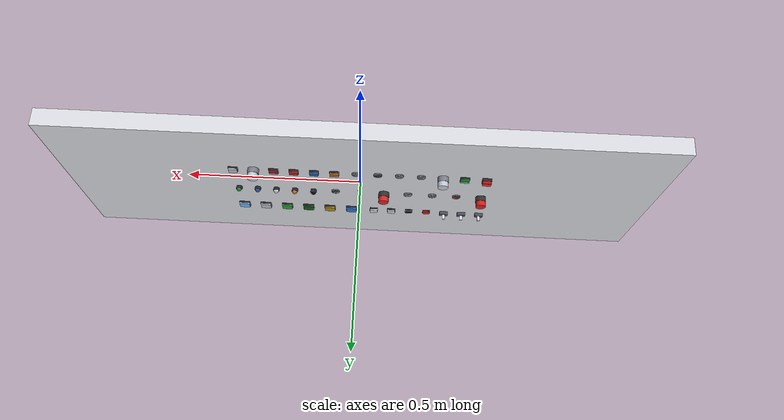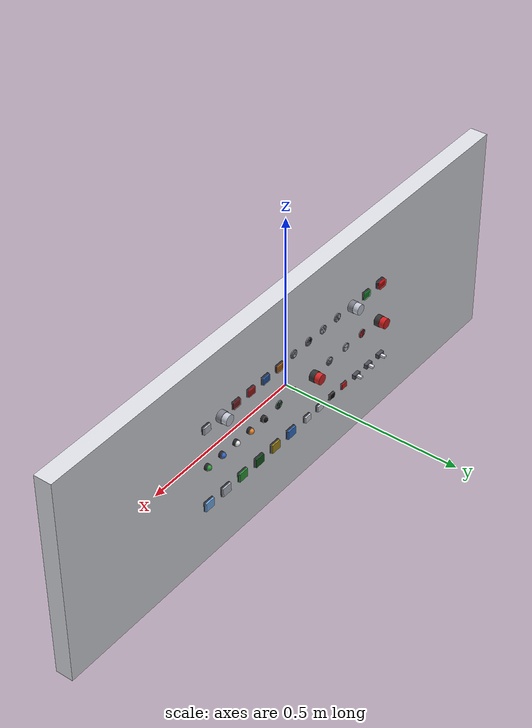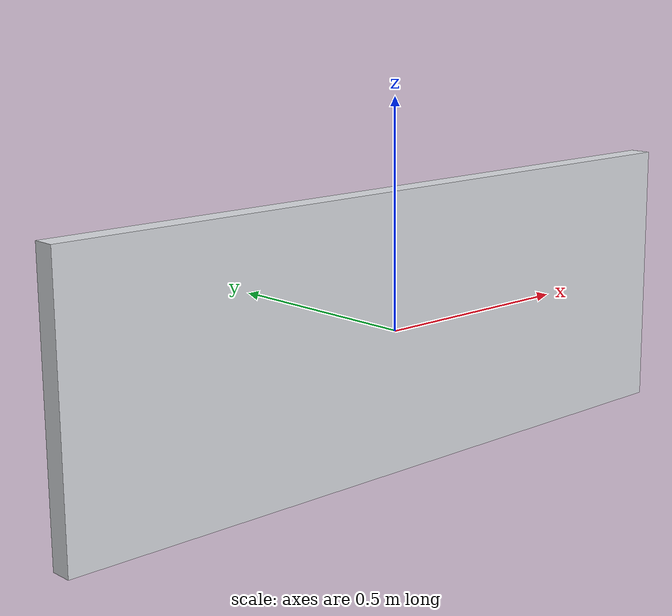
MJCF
<?xml version='1.0' encoding='utf-8'?>
<mujoco model="w2_b2_panel_base">
  <asset>
    <material name="Switch_1_bezel" rgba="0.15 0.15 0.18 1" />
    <material name="Switch_1_button" rgba="0.72 0.74 0.78 1" />
    <material name="Knob_2_base" rgba="0.5 0.5 0.55 1" />
    <material name="Knob_2_button" rgba="0.78 0.80 0.85 1" />
    <material name="Switch_3_bezel" rgba="0.15 0.15 0.18 1" />
    <material name="Switch_3_button" rgba="0.85 0.15 0.15 0.5" />
    <material name="Switch_4_bezel" rgba="0.15 0.15 0.18 1" />
    <material name="Switch_4_button" rgba="0.85 0.15 0.15 0.8" />
    <material name="Switch_5_bezel" rgba="0.15 0.15 0.18 1" />
    <material name="Switch_5_button" rgba="0.20 0.45 0.80 0.8" />
    <material name="Switch_6_bezel" rgba="0.15 0.15 0.18 1" />
    <material name="Switch_6_button" rgba="0.92 0.52 0.15 0.7" />
    <material name="Switch_7_base" rgba="0.5 0.5 0.55 1" />
    <material name="Switch_7_button" rgba="0.78 0.80 0.85 1" />
    <material name="Switch_8_base" rgba="0.5 0.5 0.55 1" />
    <material name="Switch_8_button" rgba="0.05 0.05 0.05 1" />
    <material name="Switch_9_base" rgba="0.5 0.5 0.55 1" />
    <material name="Switch_9_button" rgba="0.78 0.80 0.85 1" />
    <material name="Switch_10_base" rgba="0.5 0.5 0.55 1" />
    <material name="Switch_10_button" rgba="0.78 0.80 0.85 1" />
    <material name="Knob_11_base" rgba="0.5 0.5 0.55 1" />
    <material name="Knob_11_button" rgba="0.78 0.80 0.85 1" />
    <material name="Switch_12_bezel" rgba="0.15 0.15 0.18 1" />
    <material name="Switch_12_button" rgba="0.10 0.90 0.20 0.5" />
    <material name="Switch_13_bezel" rgba="0.15 0.15 0.18 1" />
    <material name="Switch_13_button" rgba="0.95 0.10 0.10 0.8" />
    <material name="Switch_14_base" rgba="0.15 0.15 0.18 1" />
    <material name="Switch_14_button" rgba="0.18 0.62 0.22 1" />
    <material name="Switch_15_base" rgba="0.15 0.15 0.18 1" />
    <material name="Switch_15_button" rgba="0.20 0.40 0.78 1" />
    <material name="Switch_16_base" rgba="0.15 0.15 0.18 1" />
    <material name="Switch_16_button" rgba="0.95 0.95 0.95 1" />
    <material name="Switch_17_base" rgba="0.15 0.15 0.18 1" />
    <material name="Switch_17_button" rgba="0.92 0.52 0.15 1" />
    <material name="Switch_18_base" rgba="0.15 0.15 0.18 1" />
    <material name="Switch_18_button" rgba="0.05 0.05 0.05 1" />
    <material name="Switch_19_base" rgba="0.5 0.5 0.55 1" />
    <material name="Switch_19_button" rgba="0.08 0.35 0.12 1" />
    <material name="Stop_20_base" rgba="0.2 0.2 0.2 1" />
    <material name="Stop_20_button" rgba="0.85 0.15 0.15 1" />
    <material name="Switch_21_base" rgba="0.5 0.5 0.55 1" />
    <material name="Switch_21_button" rgba="0.78 0.80 0.85 1" />
    <material name="Switch_22_base" rgba="0.5 0.5 0.55 1" />
    <material name="Switch_22_button" rgba="0.78 0.80 0.85 1" />
    <material name="Switch_23_base" rgba="0.5 0.5 0.55 1" />
    <material name="Switch_23_button" rgba="0.82 0.12 0.12 1" />
    <material name="Stop_24_base" rgba="0.2 0.2 0.2 1" />
    <material name="Stop_24_button" rgba="0.85 0.12 0.12 1" />
    <material name="Switch_25_bezel" rgba="0.15 0.15 0.18 1" />
    <material name="Switch_25_button" rgba="0.45 0.70 0.95 1" />
    <material name="Switch_26_bezel" rgba="0.15 0.15 0.18 1" />
    <material name="Switch_26_button" rgba="0.72 0.74 0.78 1" />
    <material name="Switch_27_bezel" rgba="0.15 0.15 0.18 1" />
    <material name="Switch_27_button" rgba="0.18 0.62 0.22 1" />
    <material name="Switch_28_bezel" rgba="0.15 0.15 0.18 1" />
    <material name="Switch_28_button" rgba="0.08 0.35 0.12 1" />
    <material name="Switch_29_bezel" rgba="0.15 0.15 0.18 1" />
    <material name="Switch_29_button" rgba="0.65 0.55 0.10 1" />
    <material name="Switch_30_bezel" rgba="0.15 0.15 0.18 1" />
    <material name="Switch_30_button" rgba="0.20 0.45 0.80 1" />
    <material name="Switch_31_bezel" rgba="0.15 0.15 0.18 1" />
    <material name="Switch_31_button" rgba="0.82 0.84 0.87 1" />
    <material name="Switch_32_bezel" rgba="0.15 0.15 0.18 1" />
    <material name="Switch_32_button" rgba="0.82 0.84 0.87 1" />
    <material name="Switch_33_bezel" rgba="0.15 0.15 0.18 1" />
    <material name="Switch_33_button" rgba="0.05 0.05 0.05 1" />
    <material name="Switch_34_bezel" rgba="0.15 0.15 0.18 1" />
    <material name="Switch_34_button" rgba="0.82 0.12 0.12 1" />
    <material name="Switch_35_material" rgba="0.3 0.3 0.35 1" />
    <material name="Switch_36_material" rgba="0.3 0.3 0.35 1" />
    <material name="Switch_37_material" rgba="0.3 0.3 0.35 1" />
  </asset>
  <worldbody>
    <body name="panel_mount" pos="0 0 0">
      <geom name="panel_backplate" type="box" pos="0 0 0" size="0.845 0.025 0.308" rgba="0.86 0.87 0.89 1" contype="1" conaffinity="1" />
      <site name="panel_origin" pos="0 0.025 0" size="0.006" rgba="1 0 0 1" />
      <body name="panel_slot_r4_c1" pos="0.35 0.03 0.12" quat="0.7071068 -0.7071068 0 0">
        <body name="Switch_1_r4_c1">
          <geom name="Switch_1_bezel__r4_c1" type="box" pos="0 0 0.0025" size="0.013 0.0105 0.0025" material="Switch_1_bezel" />
          <geom name="Switch_1_button__r4_c1" type="box" pos="0 0 0.0045" size="0.012 0.0095 0.0045" material="Switch_1_button" />
        </body>
      </body>
      <body name="panel_slot_r4_c2" pos="0.294 0.03 0.12" quat="0.7071068 -0.7071068 0 0">
        <body name="Knob_2_r4_c2">
          <geom name="Knob_2_base__r4_c2" type="cylinder" pos="0 0 0.0075" size="0.016 0.0075" material="Knob_2_base" />
          <geom name="Knob_2_button__r4_c2" type="cylinder" pos="0 0 0.015" size="0.0145 0.015" material="Knob_2_button" />
        </body>
      </body>
      <body name="panel_slot_r4_c3" pos="0.238 0.03 0.12" quat="0.7071068 -0.7071068 0 0">
        <body name="Switch_3_r4_c3">
          <geom name="Switch_3_bezel__r4_c3" type="box" pos="0 0 0.0025" size="0.013 0.0105 0.0025" material="Switch_3_bezel" />
          <geom name="Switch_3_button__r4_c3" type="box" pos="0 0 0.0045" size="0.012 0.0095 0.0045" material="Switch_3_button" />
        </body>
      </body>
      <body name="panel_slot_r4_c4" pos="0.182 0.03 0.12" quat="0.7071068 -0.7071068 0 0">
        <body name="Switch_4_r4_c4">
          <geom name="Switch_4_bezel__r4_c4" type="box" pos="0 0 0.0025" size="0.013 0.0105 0.0025" material="Switch_4_bezel" />
          <geom name="Switch_4_button__r4_c4" type="box" pos="0 0 0.0045" size="0.012 0.0095 0.0045" material="Switch_4_button" />
        </body>
      </body>
      <body name="panel_slot_r4_c5" pos="0.126 0.03 0.12" quat="0.7071068 -0.7071068 0 0">
        <body name="Switch_5_r4_c5">
          <geom name="Switch_5_bezel__r4_c5" type="box" pos="0 0 0.0025" size="0.013 0.0105 0.0025" material="Switch_5_bezel" />
          <geom name="Switch_5_button__r4_c5" type="box" pos="0 0 0.0045" size="0.012 0.0095 0.0045" material="Switch_5_button" />
        </body>
      </body>
      <body name="panel_slot_r4_c6" pos="0.07 0.03 0.12" quat="0.7071068 -0.7071068 0 0">
        <body name="Switch_6_r4_c6">
          <geom name="Switch_6_bezel__r4_c6" type="box" pos="0 0 0.0025" size="0.013 0.0105 0.0025" material="Switch_6_bezel" />
          <geom name="Switch_6_button__r4_c6" type="box" pos="0 0 0.0045" size="0.012 0.0095 0.0045" material="Switch_6_button" />
        </body>
      </body>
      <body name="panel_slot_r4_c7" pos="0.01 0.03 0.12" quat="0.7071068 -0.7071068 0 0">
        <body name="Switch_7_r4_c7">
          <geom name="Switch_7_base__r4_c7" type="cylinder" pos="0 0 0.0015" size="0.012 0.0015" material="Switch_7_base" />
          <geom name="Switch_7_button__r4_c7" type="cylinder" pos="0 0 0.0015" size="0.0105 0.0015" material="Switch_7_button" />
        </body>
      </body>
      <body name="panel_slot_r4_c8" pos="-0.05 0.03 0.12" quat="0.7071068 -0.7071068 0 0">
        <body name="Switch_8_r4_c8">
          <geom name="Switch_8_base__r4_c8" type="cylinder" pos="0 0 0.0015" size="0.012 0.0015" material="Switch_8_base" />
          <geom name="Switch_8_button__r4_c8" type="cylinder" pos="0 0 0.0015" size="0.0105 0.0015" material="Switch_8_button" />
        </body>
      </body>
      <body name="panel_slot_r4_c9" pos="-0.11 0.03 0.12" quat="0.7071068 -0.7071068 0 0">
        <body name="Switch_9_r4_c9">
          <geom name="Switch_9_base__r4_c9" type="cylinder" pos="0 0 0.0015" size="0.012 0.0015" material="Switch_9_base" />
          <geom name="Switch_9_button__r4_c9" type="cylinder" pos="0 0 0.0015" size="0.0105 0.0015" material="Switch_9_button" />
        </body>
      </body>
      <body name="panel_slot_r4_c10" pos="-0.17 0.03 0.12" quat="0.7071068 -0.7071068 0 0">
        <body name="Switch_10_r4_c10">
          <geom name="Switch_10_base__r4_c10" type="cylinder" pos="0 0 0.0015" size="0.012 0.0015" material="Switch_10_base" />
          <geom name="Switch_10_button__r4_c10" type="cylinder" pos="0 0 0.0015" size="0.0105 0.0015" material="Switch_10_button" />
        </body>
      </body>
      <body name="panel_slot_r4_c11" pos="-0.23 0.03 0.12" quat="0.7071068 -0.7071068 0 0">
        <body name="Knob_11_r4_c11">
          <geom name="Knob_11_base__r4_c11" type="cylinder" pos="0 0 0.0075" size="0.0155 0.0075" material="Knob_11_base" />
          <geom name="Knob_11_button__r4_c11" type="cylinder" pos="0 0 0.015" size="0.0145 0.015" material="Knob_11_button" />
        </body>
      </body>
      <body name="panel_slot_r4_c12" pos="-0.29 0.03 0.12" quat="0.7071068 -0.7071068 0 0">
        <body name="Switch_12_r4_c12">
          <geom name="Switch_12_bezel__r4_c12" type="box" pos="0 0 0.0025" size="0.013 0.0105 0.0025" material="Switch_12_bezel" />
          <geom name="Switch_12_button__r4_c12" type="box" pos="0 0 0.0045" size="0.012 0.0095 0.0045" material="Switch_12_button" />
        </body>
      </body>
      <body name="panel_slot_r4_c13" pos="-0.35 0.03 0.12" quat="0.7071068 -0.7071068 0 0">
        <body name="Switch_13_r4_c13">
          <geom name="Switch_13_bezel__r4_c13" type="box" pos="0 0 0.0041" size="0.013 0.0105 0.0041" material="Switch_13_bezel" />
          <geom name="Switch_13_button__r4_c13" type="box" pos="0 0 0.0075" size="0.012 0.0095 0.0075" material="Switch_13_button" />
        </body>
      </body>
      <body name="panel_slot_r5_c1" pos="0.35 0.03 0" quat="0.7071068 -0.7071068 0 0">
        <body name="Switch_14_r5_c1">
          <geom name="Switch_14_base__r5_c1" type="cylinder" pos="0 0 0.004" size="0.009 0.004" material="Switch_14_base" />
          <geom name="Switch_14_button__r5_c1" type="sphere" pos="0 0 0.008" size="0.0075" material="Switch_14_button" />
        </body>
      </body>
      <body name="panel_slot_r5_c2" pos="0.296 0.03 0" quat="0.7071068 -0.7071068 0 0">
        <body name="Switch_15_r5_c2">
          <geom name="Switch_15_base__r5_c2" type="cylinder" pos="0 0 0.004" size="0.009 0.004" material="Switch_15_base" />
          <geom name="Switch_15_button__r5_c2" type="sphere" pos="0 0 0.008" size="0.0075" material="Switch_15_button" />
        </body>
      </body>
      <body name="panel_slot_r5_c3" pos="0.242 0.03 0" quat="0.7071068 -0.7071068 0 0">
        <body name="Switch_16_r5_c3">
          <geom name="Switch_16_base__r5_c3" type="cylinder" pos="0 0 0.004" size="0.009 0.004" material="Switch_16_base" />
          <geom name="Switch_16_button__r5_c3" type="sphere" pos="0 0 0.008" size="0.0075" material="Switch_16_button" />
        </body>
      </body>
      <body name="panel_slot_r5_c4" pos="0.188 0.03 0" quat="0.7071068 -0.7071068 0 0">
        <body name="Switch_17_r5_c4">
          <geom name="Switch_17_base__r5_c4" type="cylinder" pos="0 0 0.004" size="0.009 0.004" material="Switch_17_base" />
          <geom name="Switch_17_button__r5_c4" type="sphere" pos="0 0 0.008" size="0.0075" material="Switch_17_button" />
        </body>
      </body>
      <body name="panel_slot_r5_c5" pos="0.134 0.03 0" quat="0.7071068 -0.7071068 0 0">
        <body name="Switch_18_r5_c5">
          <geom name="Switch_18_base__r5_c5" type="cylinder" pos="0 0 0.004" size="0.009 0.004" material="Switch_18_base" />
          <geom name="Switch_18_button__r5_c5" type="sphere" pos="0 0 0.008" size="0.0075" material="Switch_18_button" />
        </body>
      </body>
      <body name="panel_slot_r5_c6" pos="0.07 0.03 0" quat="0.7071068 -0.7071068 0 0">
        <body name="Switch_19_r5_c6">
          <geom name="Switch_19_base__r5_c6" type="cylinder" pos="0 0 0.0015" size="0.012 0.0015" material="Switch_19_base" />
          <geom name="Switch_19_button__r5_c6" type="cylinder" pos="0 0 0.0015" size="0.0105 0.0015" material="Switch_19_button" />
        </body>
      </body>
      <body name="panel_slot_r5_c8" pos="-0.07 0.03 0" quat="0.7071068 -0.7071068 0 0">
        <body name="Stop_20_r5_c8">
          <geom name="Stop_20_base__r5_c8" type="cylinder" pos="0 0 0.0075" size="0.0155 0.0075" material="Stop_20_base" />
          <geom name="Stop_20_button__r5_c8" type="cylinder" pos="0 0 0.015" size="0.0145 0.015" material="Stop_20_button" />
        </body>
      </body>
      <body name="panel_slot_r5_c9" pos="-0.14 0.03 0" quat="0.7071068 -0.7071068 0 0">
        <body name="Switch_21_r5_c9">
          <geom name="Switch_21_base__r5_c9" type="cylinder" pos="0 0 0.0015" size="0.012 0.0015" material="Switch_21_base" />
          <geom name="Switch_21_button__r5_c9" type="cylinder" pos="0 0 0.0015" size="0.0105 0.0015" material="Switch_21_button" />
        </body>
      </body>
      <body name="panel_slot_r5_c10" pos="-0.21 0.03 0" quat="0.7071068 -0.7071068 0 0">
        <body name="Switch_22_r5_c10">
          <geom name="Switch_22_base__r5_c10" type="cylinder" pos="0 0 0.0015" size="0.012 0.0015" material="Switch_22_base" />
          <geom name="Switch_22_button__r5_c10" type="cylinder" pos="0 0 0.0015" size="0.0105 0.0015" material="Switch_22_button" />
        </body>
      </body>
      <body name="panel_slot_r5_c11" pos="-0.28 0.03 0" quat="0.7071068 -0.7071068 0 0">
        <body name="Switch_23_r5_c11">
          <geom name="Switch_23_base__r5_c11" type="cylinder" pos="0 0 0.0015" size="0.012 0.0015" material="Switch_23_base" />
          <geom name="Switch_23_button__r5_c11" type="cylinder" pos="0 0 0.0015" size="0.0105 0.0015" material="Switch_23_button" />
        </body>
      </body>
      <body name="panel_slot_r5_c12" pos="-0.35 0.03 0" quat="0.7071068 -0.7071068 0 0">
        <body name="Stop_24_r5_c12">
          <geom name="Stop_24_base__r5_c12" type="cylinder" pos="0 0 0.0075" size="0.0155 0.0075" material="Stop_24_base" />
          <geom name="Stop_24_button__r5_c12" type="cylinder" pos="0 0 0.015" size="0.0145 0.015" material="Stop_24_button" />
        </body>
      </body>
      <body name="panel_slot_r6_c1" pos="0.35 0.03 -0.12" quat="0.7071068 -0.7071068 0 0">
        <body name="Switch_25_r6_c1">
          <geom name="Switch_25_bezel__r6_c1" type="box" pos="0 0 0.0025" size="0.016 0.0135 0.0025" material="Switch_25_bezel" />
          <geom name="Switch_25_button__r6_c1" type="box" pos="0 0 0.0045" size="0.015 0.0125 0.0045" material="Switch_25_button" />
        </body>
      </body>
      <body name="panel_slot_r6_c2" pos="0.285 0.03 -0.12" quat="0.7071068 -0.7071068 0 0">
        <body name="Switch_26_r6_c2">
          <geom name="Switch_26_bezel__r6_c2" type="box" pos="0 0 0.0025" size="0.016 0.0135 0.0025" material="Switch_26_bezel" />
          <geom name="Switch_26_button__r6_c2" type="box" pos="0 0 0.0045" size="0.015 0.0125 0.0045" material="Switch_26_button" />
        </body>
      </body>
      <body name="panel_slot_r6_c3" pos="0.22 0.03 -0.12" quat="0.7071068 -0.7071068 0 0">
        <body name="Switch_27_r6_c3">
          <geom name="Switch_27_bezel__r6_c3" type="box" pos="0 0 0.0025" size="0.016 0.0135 0.0025" material="Switch_27_bezel" />
          <geom name="Switch_27_button__r6_c3" type="box" pos="0 0 0.0045" size="0.015 0.0125 0.0045" material="Switch_27_button" />
        </body>
      </body>
      <body name="panel_slot_r6_c4" pos="0.155 0.03 -0.12" quat="0.7071068 -0.7071068 0 0">
        <body name="Switch_28_r6_c4">
          <geom name="Switch_28_bezel__r6_c4" type="box" pos="0 0 0.0025" size="0.016 0.0135 0.0025" material="Switch_28_bezel" />
          <geom name="Switch_28_button__r6_c4" type="box" pos="0 0 0.0045" size="0.015 0.0125 0.0045" material="Switch_28_button" />
        </body>
      </body>
      <body name="panel_slot_r6_c5" pos="0.09 0.03 -0.12" quat="0.7071068 -0.7071068 0 0">
        <body name="Switch_29_r6_c5">
          <geom name="Switch_29_bezel__r6_c5" type="box" pos="0 0 0.0025" size="0.016 0.0135 0.0025" material="Switch_29_bezel" />
          <geom name="Switch_29_button__r6_c5" type="box" pos="0 0 0.0045" size="0.015 0.0125 0.0045" material="Switch_29_button" />
        </body>
      </body>
      <body name="panel_slot_r6_c6" pos="0.025 0.03 -0.12" quat="0.7071068 -0.7071068 0 0">
        <body name="Switch_30_r6_c6">
          <geom name="Switch_30_bezel__r6_c6" type="box" pos="0 0 0.0025" size="0.016 0.0135 0.0025" material="Switch_30_bezel" />
          <geom name="Switch_30_button__r6_c6" type="box" pos="0 0 0.0045" size="0.015 0.0125 0.0045" material="Switch_30_button" />
        </body>
      </body>
      <body name="panel_slot_r6_c7" pos="-0.0432 0.03 -0.12" quat="0.7071068 -0.7071068 0 0">
        <body name="Switch_31_r6_c7">
          <geom name="Switch_31_bezel__r6_c7" type="box" pos="0 0 0.0025" size="0.012 0.0095 0.0025" material="Switch_31_bezel" />
          <geom name="Switch_31_button__r6_c7" type="box" pos="0 0 0.0045" size="0.011 0.0085 0.0045" material="Switch_31_button" />
        </body>
      </body>
      <body name="panel_slot_r6_c8" pos="-0.0962 0.03 -0.12" quat="0.7071068 -0.7071068 0 0">
        <body name="Switch_32_r6_c8">
          <geom name="Switch_32_bezel__r6_c8" type="box" pos="0 0 0.0025" size="0.012 0.0095 0.0025" material="Switch_32_bezel" />
          <geom name="Switch_32_button__r6_c8" type="box" pos="0 0 0.0045" size="0.011 0.0085 0.0045" material="Switch_32_button" />
        </body>
      </body>
      <body name="panel_slot_r6_c9" pos="-0.1492 0.03 -0.12" quat="0.7071068 -0.7071068 0 0">
        <body name="Switch_33_r6_c9">
          <geom name="Switch_33_bezel__r6_c9" type="box" pos="0 0 0.0017" size="0.011 0.0085 0.0017" material="Switch_33_bezel" />
          <geom name="Switch_33_button__r6_c9" type="box" pos="0 0 0.003" size="0.01 0.0075 0.003" material="Switch_33_button" />
        </body>
      </body>
      <body name="panel_slot_r6_c10" pos="-0.2022 0.03 -0.12" quat="0.7071068 -0.7071068 0 0">
        <body name="Switch_34_r6_c10">
          <geom name="Switch_34_bezel__r6_c10" type="box" pos="0 0 0.0017" size="0.011 0.0085 0.0017" material="Switch_34_bezel" />
          <geom name="Switch_34_button__r6_c10" type="box" pos="0 0 0.003" size="0.01 0.0075 0.003" material="Switch_34_button" />
        </body>
      </body>
      <body name="panel_slot_r6_c11" pos="-0.2552 0.03 -0.12" quat="0.7071068 -0.7071068 0 0">
        <body name="Switch_35_r6_c11">
          <geom name="Switch_35_base__r6_c11" type="box" pos="0 0 0.005" size="0.012 0.006 0.005" material="Switch_35_material" />
          <geom name="Switch_35_toggle__r6_c11" type="box" pos="0 0 0.015" size="0.004 0.003 0.008" rgba="0.9 0.9 0.95 1" />
        </body>
      </body>
      <body name="panel_slot_r6_c12" pos="-0.3082 0.03 -0.12" quat="0.7071068 -0.7071068 0 0">
        <body name="Switch_36_r6_c12">
          <geom name="Switch_36_base__r6_c12" type="box" pos="0 0 0.005" size="0.012 0.006 0.005" material="Switch_36_material" />
          <geom name="Switch_36_toggle__r6_c12" type="box" pos="0 0 0.015" size="0.004 0.003 0.008" rgba="0.9 0.9 0.95 1" />
        </body>
      </body>
      <body name="panel_slot_r6_c13" pos="-0.3612 0.03 -0.12" quat="0.7071068 -0.7071068 0 0">
        <body name="Switch_37_r6_c13">
          <geom name="Switch_37_base__r6_c13" type="box" pos="0 0 0.005" size="0.012 0.006 0.005" material="Switch_37_material" />
          <geom name="Switch_37_toggle__r6_c13" type="box" pos="0 0 0.015" size="0.004 0.003 0.008" rgba="0.9 0.9 0.95 1" />
        </body>
      </body>
    </body>
  </worldbody>
</mujoco>
